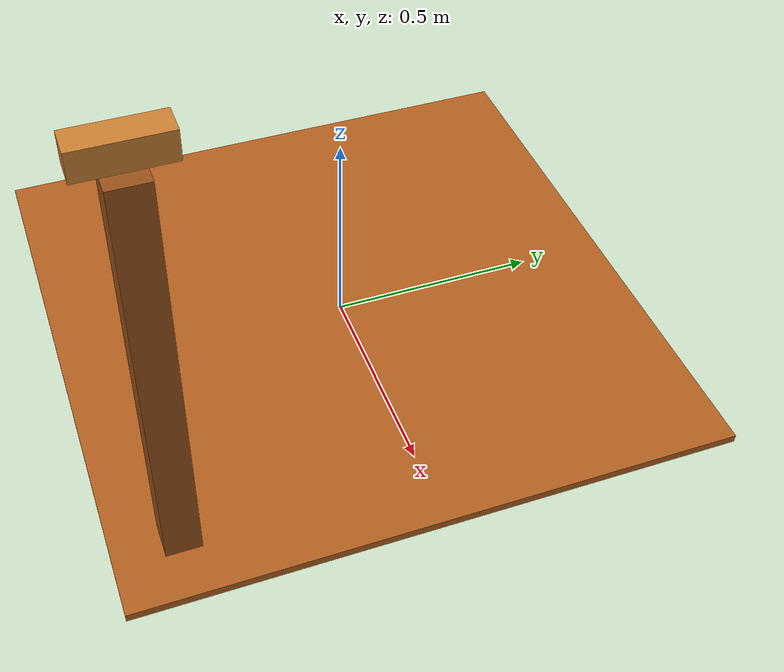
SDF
<?xml version="1.0" ?>
<sdf version="1.6">
<model name="dropoff_station">
  <static>true</static>
  <link name="link">
<visual name="marker">
<pose>0 0 0.01 0 0 0</pose>
<geometry><box><size>1.4 1.4 0.02</size></box></geometry>
<material><ambient>0.3 0.16 0.05 1</ambient>
<diffuse>0.7 0.38 0.12 1</diffuse>
<specular>0.1 0.1 0.1 1</specular></material>
</visual>
<visual name="pole">
<pose>0.55 -0.55 0.5 0 0 0</pose>
<geometry><box><size>0.08 0.08 1.0</size></box></geometry>
<material><ambient>0.26 0.14 0.04 1</ambient>
<diffuse>0.6 0.32 0.1 1</diffuse>
<specular>0.1 0.1 0.1 1</specular></material>
</visual>
<visual name="light">
<pose>0.55 -0.55 1.05 0 0 0</pose>
<geometry><box><size>0.06 0.18 0.06</size></box></geometry>
<material><ambient>0.5 0.3 0.1 1</ambient>
<diffuse>0.8 0.5 0.2 1</diffuse>
<specular>0.1 0.1 0.1 1</specular>
<emissive>0.9 0.55 0.15 1</emissive></material>
</visual>
  </link>
</model>
</sdf>
